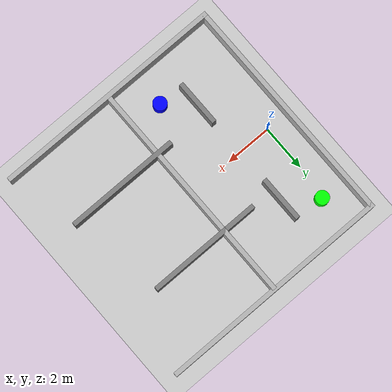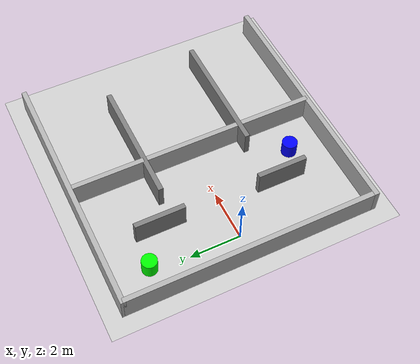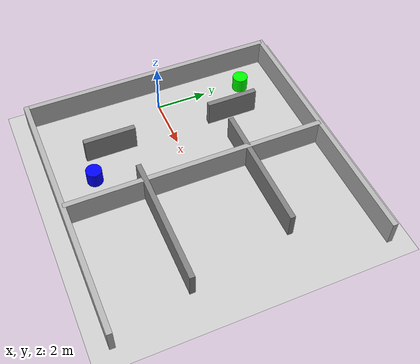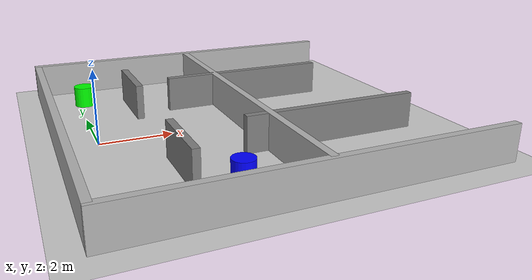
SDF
<?xml version="1.0"?>
<sdf version="1.9">
    <world name="small_world">

        <physics name="1ms" type="dart">
            <max_step_size>0.001</max_step_size>
            <real_time_factor>1.0</real_time_factor>
            <real_time_update_rate>1000</real_time_update_rate>
        </physics>

        <plugin
            filename="gz-sim-physics-system"
            name="gz::sim::systems::Physics">
        </plugin>
        <plugin
            filename="gz-sim-user-commands-system"
            name="gz::sim::systems::UserCommands">
        </plugin>
        <plugin
            filename="gz-sim-scene-broadcaster-system"
            name="gz::sim::systems::SceneBroadcaster">
        </plugin>
        <plugin
            filename="gz-sim-sensors-system"
            name="gz::sim::systems::Sensors">
            <render_engine>ogre2</render_engine>
        </plugin>
        <plugin
            filename="gz-sim-contact-system"
            name="gz::sim::systems::Contact">
        </plugin>

        <spherical_coordinates>
            <surface_model>EARTH_WGS84</surface_model>
            <latitude_deg>54.904449</latitude_deg>
            <longitude_deg>-1.381450</longitude_deg>
            <elevation>0</elevation>
            <heading_deg>0</heading_deg>
            <magnetic_field>1.7805e-9 1.30e-11 4.6725e-9</magnetic_field>
        </spherical_coordinates>

        <light type="directional" name="sun">
            <cast_shadows>true</cast_shadows>
            <pose>0 0 10 0 0 0</pose>
            <diffuse>0.8 0.8 0.8 1</diffuse>
            <specular>0.2 0.2 0.2 1</specular>
            <attenuation>
                <range>1000</range>
                <constant>0.9</constant>
                <linear>0.01</linear>
                <quadratic>0.001</quadratic>
            </attenuation>
            <direction>-0.5 0.1 -0.9</direction>
        </light>

        <model name='ground_plane'>
            <static>1</static>
            <link name='link'>
                <collision name='collision'>
                    <geometry>
                        <plane>
                            <normal>0 0 1</normal>
                            <size>100 100</size>
                        </plane>
                    </geometry>
                </collision>
                <visual name='visual'>
                    <geometry>
                        <plane>
                            <normal>0 0 1</normal>
                            <size>100 100</size>
                        </plane>
                    </geometry>
                    <material>
                        <ambient>0.8 0.8 0.8 1</ambient>
                        <diffuse>0.8 0.8 0.8 1</diffuse>
                        <specular>0.8 0.8 0.8 1</specular>
                    </material>
                </visual>
            </link>
        </model>

        <!-- NORTH WALL (far ahead) -->
        <model name="wall_north">
            <pose>4 0 0.5 0 0 0</pose>
            <static>true</static>
            <link name="link">
                <collision name="collision">
                    <geometry>
                        <box>
                            <size>0.2 10 1</size>
                        </box>
                    </geometry>
                </collision>
                <visual name="visual">
                    <geometry>
                        <box>
                            <size>0.2 10 1</size>
                        </box>
                    </geometry>
                    <material>
                        <ambient>0.7 0.7 0.7 1</ambient>
                        <diffuse>0.7 0.7 0.7 1</diffuse>
                    </material>
                </visual>

                <sensor name="wall_contact_sensor" type="contact">
                    <always_on>true</always_on>
                    <update_rate>100</update_rate>
                    <contact>
                        <collision>collision</collision>
                    </contact>
                    <topic>/contact</topic>
                </sensor>
            </link>
        </model>

        <!-- SOUTH WALL (right behind robot) -->
        <model name="wall_south">
            <pose>-1 0 0.5 0 0 0</pose>
            <static>true</static>
            <link name="link">
                <collision name="collision">
                    <geometry>
                        <box>
                            <size>0.2 10 1</size>
                        </box>
                    </geometry>
                </collision>
                <visual name="visual">
                    <geometry>
                        <box>
                            <size>0.2 10 1</size>
                        </box>
                    </geometry>
                    <material>
                        <ambient>0.7 0.7 0.7 1</ambient>
                        <diffuse>0.7 0.7 0.7 1</diffuse>
                    </material>
                </visual>
            </link>
        </model>

        <!-- EAST WALL (right side) -->
        <model name="wall_east">
            <pose>4 5 0.5 0 0 0</pose>
            <static>true</static>
            <link name="link">
                <collision name="collision">
                    <geometry>
                        <box>
                            <size>10.2 0.2 1</size>
                        </box>
                    </geometry>
                </collision>
                <visual name="visual">
                    <geometry>
                        <box>
                            <size>10.2 0.2 1</size>
                        </box>
                    </geometry>
                    <material>
                        <ambient>0.7 0.7 0.7 1</ambient>
                        <diffuse>0.7 0.7 0.7 1</diffuse>
                    </material>
                </visual>
            </link>
        </model>

        <!-- WEST WALL (left side) -->
        <model name="wall_west">
            <pose>4 -5 0.5 0 0 0</pose>
            <static>true</static>
            <link name="link">
                <collision name="collision">
                    <geometry>
                        <box>
                            <size>10.2 0.2 1</size>
                        </box>
                    </geometry>
                </collision>
                <visual name="visual">
                    <geometry>
                        <box>
                            <size>10.2 0.2 1</size>
                        </box>
                    </geometry>
                    <material>
                        <ambient>0.7 0.7 0.7 1</ambient>
                        <diffuse>0.7 0.7 0.7 1</diffuse>
                    </material>
                </visual>
            </link>
        </model>

        <model name="interior_wall_1">
            <pose>1.5 -2.5 0.5 0 0 0</pose>
            <static>true</static>
            <link name="link">
                <collision name="collision">
                    <geometry>
                        <box>
                            <size>0.2 2 1</size>
                        </box>
                    </geometry>
                </collision>
                <visual name="visual">
                    <geometry>
                        <box>
                            <size>0.2 2 1</size>
                        </box>
                    </geometry>
                    <material>
                        <ambient>0.5 0.5 0.5 1</ambient>
                        <diffuse>0.5 0.5 0.5 1</diffuse>
                    </material>
                </visual>
            </link>
        </model>

        <!-- Vertical wall divider 2 (right side) -->
        <model name="interior_wall_2">
            <pose>1.5 2.5 0.5 0 0 0</pose>
            <static>true</static>
            <link name="link">
                <collision name="collision">
                    <geometry>
                        <box>
                            <size>0.2 2 1</size>
                        </box>
                    </geometry>
                </collision>
                <visual name="visual">
                    <geometry>
                        <box>
                            <size>0.2 2 1</size>
                        </box>
                    </geometry>
                    <material>
                        <ambient>0.5 0.5 0.5 1</ambient>
                        <diffuse>0.5 0.5 0.5 1</diffuse>
                    </material>
                </visual>
            </link>
        </model>

        <!-- Horizontal wall creating upper corridor -->
        <model name="interior_wall_3">
            <pose>5 2 0.5 0 0 0</pose>
            <static>true</static>
            <link name="link">
                <collision name="collision">
                    <geometry>
                        <box>
                            <size>5 0.2 1</size>
                        </box>
                    </geometry>
                </collision>
                <visual name="visual">
                    <geometry>
                        <box>
                            <size>5 0.2 1</size>
                        </box>
                    </geometry>
                    <material>
                        <ambient>0.5 0.5 0.5 1</ambient>
                        <diffuse>0.5 0.5 0.5 1</diffuse>
                    </material>
                </visual>
            </link>
        </model>

        <!-- Horizontal wall creating lower corridor -->
        <model name="interior_wall_4">
            <pose>5.8 -2 0.5 0 0 0</pose>
            <static>true</static>
            <link name="link">
                <collision name="collision">
                    <geometry>
                        <box>
                            <size>5 0.2 1</size>
                        </box>
                    </geometry>
                </collision>
                <visual name="visual">
                    <geometry>
                        <box>
                            <size>5 0.2 1</size>
                        </box>
                    </geometry>
                    <material>
                        <ambient>0.5 0.5 0.5 1</ambient>
                        <diffuse>0.5 0.5 0.5 1</diffuse>
                    </material>
                </visual>
            </link>
        </model>

        <model name="obstacle_2">
            <pose>0.2 3.5 0.3 0 0 0</pose>
            <static>true</static>
            <link name="link">
                <collision name="collision">
                    <geometry>
                        <cylinder>
                            <radius>0.3</radius>
                            <length>0.6</length>
                        </cylinder>
                    </geometry>
                </collision>
                <visual name="visual">
                    <geometry>
                        <cylinder>
                            <radius>0.3</radius>
                            <length>0.6</length>
                        </cylinder>
                    </geometry>
                    <material>
                        <ambient>0 1 0 1</ambient>
                        <diffuse>0 1 0 1</diffuse>
                    </material>
                </visual>
            </link>
        </model>

        <model name="obstacle_3">
            <pose>2.6 -3.5 0.3 0 0 0</pose>
            <static>true</static>
            <link name="link">
                <collision name="collision">
                    <geometry>
                        <cylinder>
                            <radius>0.3</radius>
                            <length>0.6</length>
                        </cylinder>
                    </geometry>
                </collision>
                <visual name="visual">
                    <geometry>
                        <cylinder>
                            <radius>0.3</radius>
                            <length>0.6</length>
                        </cylinder>
                    </geometry>
                    <material>
                        <ambient>0 0 1 1</ambient>
                        <diffuse>0 0 1 1</diffuse>
                    </material>
                </visual>
            </link>
        </model>
    </world>
</sdf>
